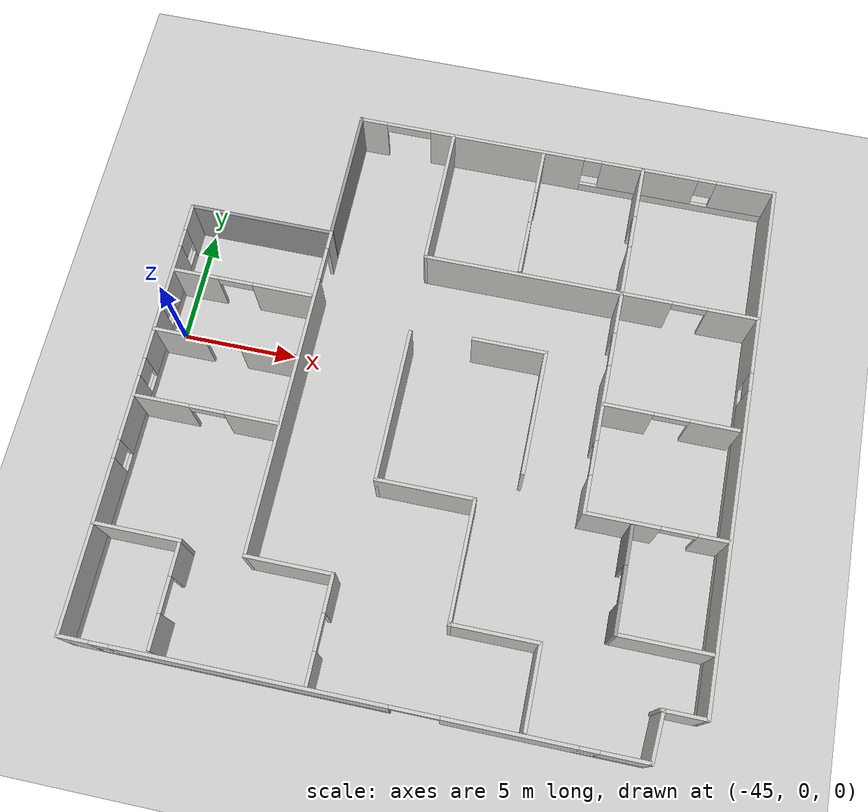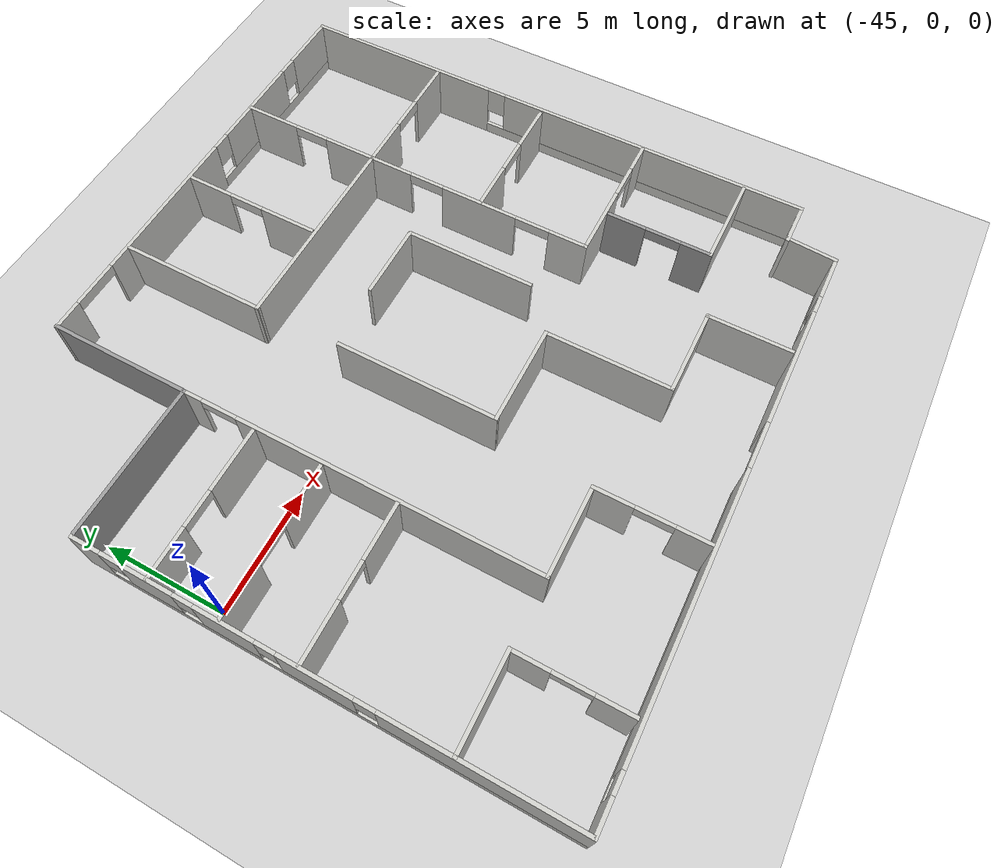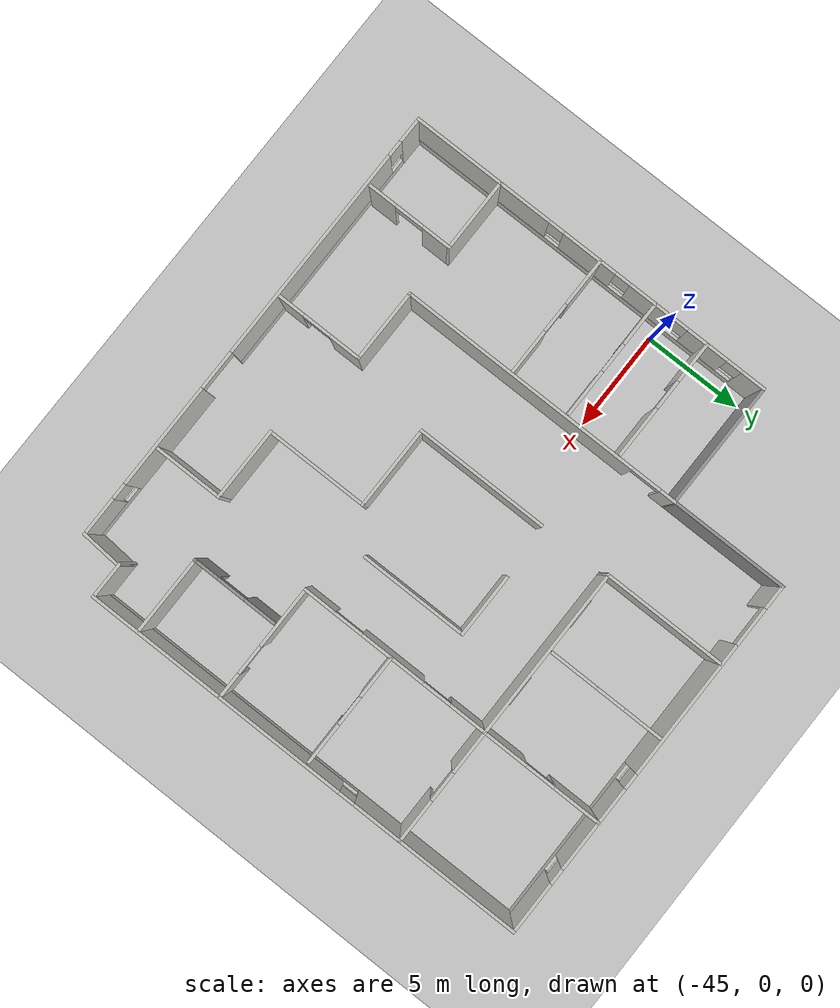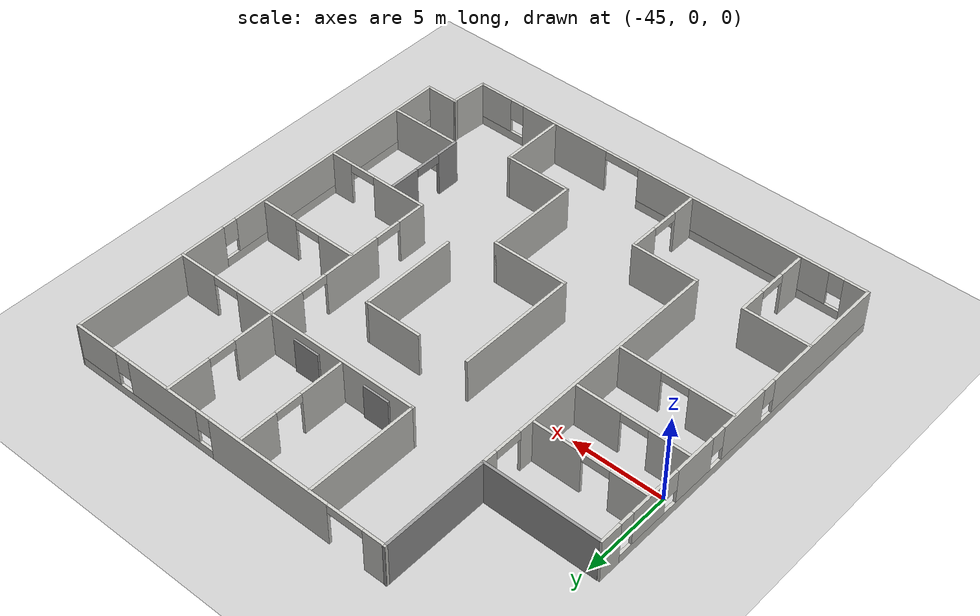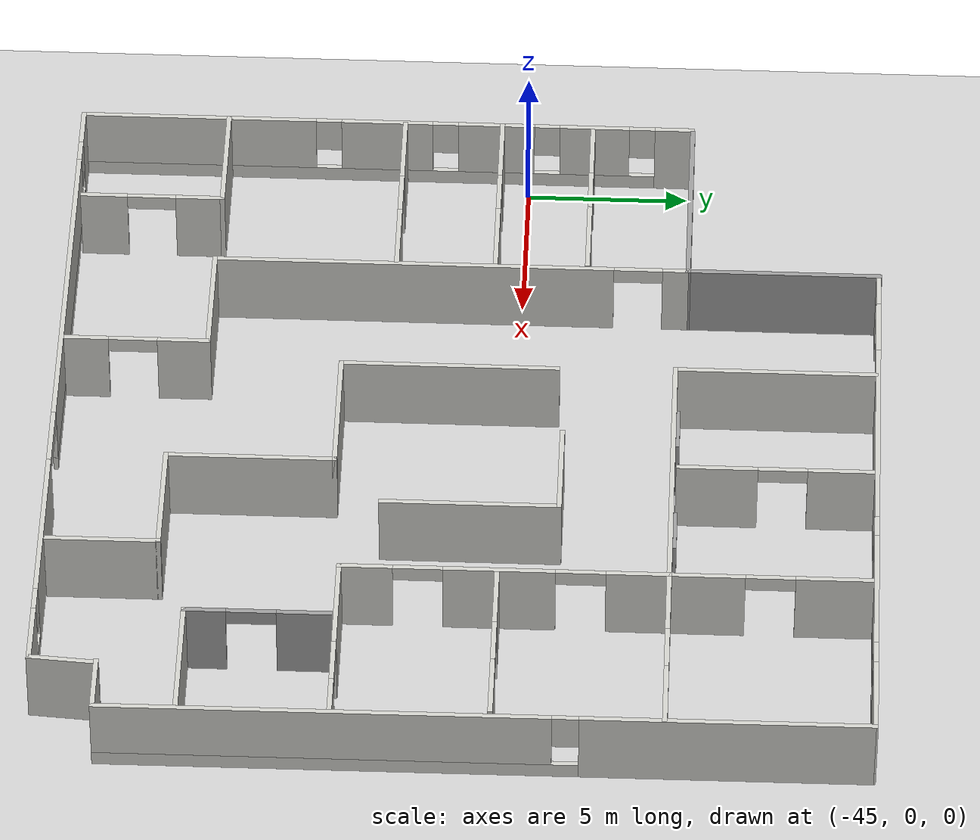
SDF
<sdf version="1.6">
 <world name="default">
  <model name="ground_plane">
   <static>1</static>
   <link name="link">
    <collision name="collision">
     <geometry><plane><normal>0 0 1</normal><size>100 100</size></plane></geometry>
     <surface><friction><ode><mu>100</mu><mu2>50</mu2></ode></friction></surface>
    </collision>
    <visual name="visual">
     <cast_shadows>0</cast_shadows>
     <geometry><plane><normal>0 0 1</normal><size>100 100</size></plane></geometry>
     <material>
      <script><uri>file://media/materials/scripts/gazebo.material</uri><name>Gazebo/Grey</name></script>
     </material>
    </visual>
   </link>
  </model>
  <model name="Multi_25_4">
   <pose>-33.1031 -1.49361 0 0 -0 0</pose>
   <link name="Door_40">
    <collision name="Door_40_Collision">
     <geometry><box><size>1.5 0.17 2</size></box></geometry>
     <pose>0 0 1 0 -0 0</pose>
    </collision>
    <visual name="Door_40_Visual">
     <pose>0 0 1 0 -0 0</pose>
     <geometry><box><size>1.5 0.17 2</size></box></geometry>
     <material>
      <script><uri>file://media/materials/scripts/gazebo.material</uri><name>Gazebo/Grey</name></script>
     </material>
    </visual>
    <pose>0.06254 6.41485 0 0 -0 0</pose>
   </link>
   <link name="Door_41">
    <collision name="Door_41_Collision">
     <geometry><box><size>1.5 0.17 2</size></box></geometry>
     <pose>0 0 1 0 -0 0</pose>
    </collision>
    <visual name="Door_41_Visual">
     <pose>0 0 1 0 -0 0</pose>
     <geometry><box><size>1.5 0.17 2</size></box></geometry>
     <material>
      <script><uri>file://media/materials/scripts/gazebo.material</uri><name>Gazebo/Grey</name></script>
     </material>
    </visual>
    <pose>4.32099 6.41485 0 0 -0 0</pose>
   </link>
   <link name="Wall_114">
    <pose>3.10866 12.4922 0 0 -0 0</pose>
    <visual name="Wall_114_Visual_0">
     <pose>-8.79485 0 1.25 0 -0 0</pose>
     <geometry><box><size>1.28231 0.15 2.5</size></box></geometry>
     <material>
      <script><uri>file://media/materials/scripts/gazebo.material</uri><name>Gazebo/CeilingTiled</name></script>
      <ambient>1 1 1 1</ambient>
     </material>
     <meta><layer>0</layer></meta>
    </visual>
    <collision name="Wall_114_Collision_0">
     <geometry><box><size>1.28231 0.15 2.5</size></box></geometry>
     <pose>-8.79485 0 1.25 0 -0 0</pose>
    </collision>
    <visual name="Wall_114_Visual_1">
     <pose>-2.64652 0 1.25 0 -0 0</pose>
     <geometry><box><size>7.01435 0.15 2.5</size></box></geometry>
     <material>
      <script><uri>file://media/materials/scripts/gazebo.material</uri><name>Gazebo/CeilingTiled</name></script>
      <ambient>1 1 1 1</ambient>
     </material>
     <meta><layer>0</layer></meta>
    </visual>
    <collision name="Wall_114_Collision_1">
     <geometry><box><size>7.01435 0.15 2.5</size></box></geometry>
     <pose>-2.64652 0 1.25 0 -0 0</pose>
    </collision>
    <visual name="Wall_114_Visual_2">
     <pose>5.14833 0 0.25 0 -0 0</pose>
     <geometry><box><size>8.57534 0.15 0.5</size></box></geometry>
     <material>
      <script><uri>file://media/materials/scripts/gazebo.material</uri><name>Gazebo/CeilingTiled</name></script>
      <ambient>1 1 1 1</ambient>
     </material>
     <meta><layer>0</layer></meta>
    </visual>
    <collision name="Wall_114_Collision_2">
     <geometry><box><size>8.57534 0.15 0.5</size></box></geometry>
     <pose>5.14833 0 0.25 0 -0 0</pose>
    </collision>
    <visual name="Wall_114_Visual_3">
     <pose>3.82871 0 1.5 0 -0 0</pose>
     <geometry><box><size>4.3361 0.15 2</size></box></geometry>
     <material>
      <script><uri>file://media/materials/scripts/gazebo.material</uri><name>Gazebo/CeilingTiled</name></script>
      <ambient>1 1 1 1</ambient>
     </material>
     <meta><layer>0</layer></meta>
    </visual>
    <collision name="Wall_114_Collision_3">
     <geometry><box><size>4.3361 0.15 2</size></box></geometry>
     <pose>3.82871 0 1.5 0 -0 0</pose>
    </collision>
    <visual name="Wall_114_Visual_4">
     <pose>8.11638 0 1.5 0 -0 0</pose>
     <geometry><box><size>2.63924 0.15 2</size></box></geometry>
     <material>
      <script><uri>file://media/materials/scripts/gazebo.material</uri><name>Gazebo/CeilingTiled</name></script>
      <ambient>1 1 1 1</ambient>
     </material>
     <meta><layer>0</layer></meta>
    </visual>
    <collision name="Wall_114_Collision_4">
     <geometry><box><size>2.63924 0.15 2</size></box></geometry>
     <pose>8.11638 0 1.5 0 -0 0</pose>
    </collision>
    <visual name="Wall_114_Visual_5">
     <pose>1.26066 0 1.9 0 -0 0</pose>
     <geometry><box><size>0.8 0.15 1.2</size></box></geometry>
     <material>
      <script><uri>file://media/materials/scripts/gazebo.material</uri><name>Gazebo/CeilingTiled</name></script>
      <ambient>1 1 1 1</ambient>
     </material>
     <meta><layer>0</layer></meta>
    </visual>
    <collision name="Wall_114_Collision_5">
     <geometry><box><size>0.8 0.15 1.2</size></box></geometry>
     <pose>1.26066 0 1.9 0 -0 0</pose>
    </collision>
    <visual name="Wall_114_Visual_6">
     <pose>6.39676 0 1.9 0 -0 0</pose>
     <geometry><box><size>0.8 0.15 1.2</size></box></geometry>
     <material>
      <script><uri>file://media/materials/scripts/gazebo.material</uri><name>Gazebo/CeilingTiled</name></script>
      <ambient>1 1 1 1</ambient>
     </material>
     <meta><layer>0</layer></meta>
    </visual>
    <collision name="Wall_114_Collision_6">
     <geometry><box><size>0.8 0.15 1.2</size></box></geometry>
     <pose>6.39676 0 1.9 0 -0 0</pose>
    </collision>
    <visual name="Wall_114_Visual_7">
     <pose>-7.15369 0 2.25 0 -0 0</pose>
     <geometry><box><size>2 0.15 0.5</size></box></geometry>
     <material>
      <script><uri>file://media/materials/scripts/gazebo.material</uri><name>Gazebo/CeilingTiled</name></script>
      <ambient>1 1 1 1</ambient>
     </material>
     <meta><layer>0</layer></meta>
    </visual>
    <collision name="Wall_114_Collision_7">
     <geometry><box><size>2 0.15 0.5</size></box></geometry>
     <pose>-7.15369 0 2.25 0 -0 0</pose>
    </collision>
   </link>
   <link name="Wall_116">
    <pose>-12.5303 -2.9483 0 0 -0 -1.5708</pose>
    <visual name="Wall_116_Visual_0">
     <pose>-9.01278 0 1.25 0 -0 0</pose>
     <geometry><box><size>1.24344 0.15 2.5</size></box></geometry>
     <material>
      <script><uri>file://media/materials/scripts/gazebo.material</uri><name>Gazebo/CeilingTiled</name></script>
      <ambient>1 1 1 1</ambient>
     </material>
     <meta><layer>0</layer></meta>
    </visual>
    <collision name="Wall_116_Collision_0">
     <geometry><box><size>1.24344 0.15 2.5</size></box></geometry>
     <pose>-9.01278 0 1.25 0 -0 0</pose>
    </collision>
    <visual name="Wall_116_Visual_1">
     <pose>0.621721 0 0.25 0 -0 0</pose>
     <geometry><box><size>18.0256 0.15 0.5</size></box></geometry>
     <material>
      <script><uri>file://media/materials/scripts/gazebo.material</uri><name>Gazebo/CeilingTiled</name></script>
      <ambient>1 1 1 1</ambient>
     </material>
     <meta><layer>0</layer></meta>
    </visual>
    <collision name="Wall_116_Collision_1">
     <geometry><box><size>18.0256 0.15 0.5</size></box></geometry>
     <pose>0.621721 0 0.25 0 -0 0</pose>
    </collision>
    <visual name="Wall_116_Visual_2">
     <pose>-6.50145 0 1.5 0 -0 0</pose>
     <geometry><box><size>2.17922 0.15 2</size></box></geometry>
     <material>
      <script><uri>file://media/materials/scripts/gazebo.material</uri><name>Gazebo/CeilingTiled</name></script>
      <ambient>1 1 1 1</ambient>
     </material>
     <meta><layer>0</layer></meta>
    </visual>
    <collision name="Wall_116_Collision_2">
     <geometry><box><size>2.17922 0.15 2</size></box></geometry>
     <pose>-6.50145 0 1.5 0 -0 0</pose>
    </collision>
    <visual name="Wall_116_Visual_3">
     <pose>-3.41582 0 1.5 0 -0 0</pose>
     <geometry><box><size>2.39202 0.15 2</size></box></geometry>
     <material>
      <script><uri>file://media/materials/scripts/gazebo.material</uri><name>Gazebo/CeilingTiled</name></script>
      <ambient>1 1 1 1</ambient>
     </material>
     <meta><layer>0</layer></meta>
    </visual>
    <collision name="Wall_116_Collision_3">
     <geometry><box><size>2.39202 0.15 2</size></box></geometry>
     <pose>-3.41582 0 1.5 0 -0 0</pose>
    </collision>
    <visual name="Wall_116_Visual_4">
     <pose>0.015603 0 1.5 0 -0 0</pose>
     <geometry><box><size>2.87083 0.15 2</size></box></geometry>
     <material>
      <script><uri>file://media/materials/scripts/gazebo.material</uri><name>Gazebo/CeilingTiled</name></script>
      <ambient>1 1 1 1</ambient>
     </material>
     <meta><layer>0</layer></meta>
    </visual>
    <collision name="Wall_116_Collision_4">
     <geometry><box><size>2.87083 0.15 2</size></box></geometry>
     <pose>0.015603 0 1.5 0 -0 0</pose>
    </collision>
    <visual name="Wall_116_Visual_5">
     <pose>5.94276 0 1.5 0 -0 0</pose>
     <geometry><box><size>7.38348 0.15 2</size></box></geometry>
     <material>
      <script><uri>file://media/materials/scripts/gazebo.material</uri><name>Gazebo/CeilingTiled</name></script>
      <ambient>1 1 1 1</ambient>
     </material>
     <meta><layer>0</layer></meta>
    </visual>
    <collision name="Wall_116_Collision_5">
     <geometry><box><size>7.38348 0.15 2</size></box></geometry>
     <pose>5.94276 0 1.5 0 -0 0</pose>
    </collision>
    <visual name="Wall_116_Visual_6">
     <pose>-7.99106 0 1.9 0 -0 0</pose>
     <geometry><box><size>0.8 0.15 1.2</size></box></geometry>
     <material>
      <script><uri>file://media/materials/scripts/gazebo.material</uri><name>Gazebo/CeilingTiled</name></script>
      <ambient>1 1 1 1</ambient>
     </material>
     <meta><layer>0</layer></meta>
    </visual>
    <collision name="Wall_116_Collision_6">
     <geometry><box><size>0.8 0.15 1.2</size></box></geometry>
     <pose>-7.99106 0 1.9 0 -0 0</pose>
    </collision>
    <visual name="Wall_116_Visual_7">
     <pose>-5.01183 0 1.9 0 -0 0</pose>
     <geometry><box><size>0.8 0.15 1.2</size></box></geometry>
     <material>
      <script><uri>file://media/materials/scripts/gazebo.material</uri><name>Gazebo/CeilingTiled</name></script>
      <ambient>1 1 1 1</ambient>
     </material>
     <meta><layer>0</layer></meta>
    </visual>
    <collision name="Wall_116_Collision_7">
     <geometry><box><size>0.8 0.15 1.2</size></box></geometry>
     <pose>-5.01183 0 1.9 0 -0 0</pose>
    </collision>
    <visual name="Wall_116_Visual_8">
     <pose>-1.81981 0 1.9 0 -0 0</pose>
     <geometry><box><size>0.8 0.15 1.2</size></box></geometry>
     <material>
      <script><uri>file://media/materials/scripts/gazebo.material</uri><name>Gazebo/CeilingTiled</name></script>
      <ambient>1 1 1 1</ambient>
     </material>
     <meta><layer>0</layer></meta>
    </visual>
    <collision name="Wall_116_Collision_8">
     <geometry><box><size>0.8 0.15 1.2</size></box></geometry>
     <pose>-1.81981 0 1.9 0 -0 0</pose>
    </collision>
    <visual name="Wall_116_Visual_9">
     <pose>1.85102 0 1.9 0 -0 0</pose>
     <geometry><box><size>0.8 0.15 1.2</size></box></geometry>
     <material>
      <script><uri>file://media/materials/scripts/gazebo.material</uri><name>Gazebo/CeilingTiled</name></script>
      <ambient>1 1 1 1</ambient>
     </material>
     <meta><layer>0</layer></meta>
    </visual>
    <collision name="Wall_116_Collision_9">
     <geometry><box><size>0.8 0.15 1.2</size></box></geometry>
     <pose>1.85102 0 1.9 0 -0 0</pose>
    </collision>
   </link>
   <link name="Wall_118">
    <pose>12.4999 0.992199 0 0 -0 -1.56817</pose>
    <visual name="Wall_118_Visual_0">
     <pose>-7.19016 0 1.25 0 -0 0</pose>
     <geometry><box><size>8.76975 0.15 2.5</size></box></geometry>
     <material>
      <script><uri>file://media/materials/scripts/gazebo.material</uri><name>Gazebo/CeilingTiled</name></script>
      <ambient>1 1 1 1</ambient>
     </material>
     <meta><layer>0</layer></meta>
    </visual>
    <collision name="Wall_118_Collision_0">
     <geometry><box><size>8.76975 0.15 2.5</size></box></geometry>
     <pose>-7.19016 0 1.25 0 -0 0</pose>
    </collision>
    <visual name="Wall_118_Visual_1">
     <pose>4.38488 0 0.25 0 -0 0</pose>
     <geometry><box><size>14.3803 0.15 0.5</size></box></geometry>
     <material>
      <script><uri>file://media/materials/scripts/gazebo.material</uri><name>Gazebo/CeilingTiled</name></script>
      <ambient>1 1 1 1</ambient>
     </material>
     <meta><layer>0</layer></meta>
    </visual>
    <collision name="Wall_118_Collision_1">
     <geometry><box><size>14.3803 0.15 0.5</size></box></geometry>
     <pose>4.38488 0 0.25 0 -0 0</pose>
    </collision>
    <visual name="Wall_118_Visual_2">
     <pose>4.78488 0 1.5 0 -0 0</pose>
     <geometry><box><size>13.5803 0.15 2</size></box></geometry>
     <material>
      <script><uri>file://media/materials/scripts/gazebo.material</uri><name>Gazebo/CeilingTiled</name></script>
      <ambient>1 1 1 1</ambient>
     </material>
     <meta><layer>0</layer></meta>
    </visual>
    <collision name="Wall_118_Collision_2">
     <geometry><box><size>13.5803 0.15 2</size></box></geometry>
     <pose>4.78488 0 1.5 0 -0 0</pose>
    </collision>
    <visual name="Wall_118_Visual_3">
     <pose>-2.40529 0 1.9 0 -0 0</pose>
     <geometry><box><size>0.8 0.15 1.2</size></box></geometry>
     <material>
      <script><uri>file://media/materials/scripts/gazebo.material</uri><name>Gazebo/CeilingTiled</name></script>
      <ambient>1 1 1 1</ambient>
     </material>
     <meta><layer>0</layer></meta>
    </visual>
    <collision name="Wall_118_Collision_3">
     <geometry><box><size>0.8 0.15 1.2</size></box></geometry>
     <pose>-2.40529 0 1.9 0 -0 0</pose>
    </collision>
   </link>
   <link name="Wall_120">
    <pose>-0.961819 -12.5078 0 0 -0 0</pose>
    <visual name="Wall_120_Visual_0">
     <pose>-10.9737 0 1.25 0 -0 0</pose>
     <geometry><box><size>1.33957 0.15 2.5</size></box></geometry>
     <material>
      <script><uri>file://media/materials/scripts/gazebo.material</uri><name>Gazebo/CeilingTiled</name></script>
      <ambient>1 1 1 1</ambient>
     </material>
     <meta><layer>0</layer></meta>
    </visual>
    <collision name="Wall_120_Collision_0">
     <geometry><box><size>1.33957 0.15 2.5</size></box></geometry>
     <pose>-10.9737 0 1.25 0 -0 0</pose>
    </collision>
    <visual name="Wall_120_Visual_1">
     <pose>6.20682 0 1.25 0 -0 0</pose>
     <geometry><box><size>5.32866 0.15 2.5</size></box></geometry>
     <material>
      <script><uri>file://media/materials/scripts/gazebo.material</uri><name>Gazebo/CeilingTiled</name></script>
      <ambient>1 1 1 1</ambient>
     </material>
     <meta><layer>0</layer></meta>
    </visual>
    <collision name="Wall_120_Collision_1">
     <geometry><box><size>5.32866 0.15 2.5</size></box></geometry>
     <pose>6.20682 0 1.25 0 -0 0</pose>
    </collision>
    <visual name="Wall_120_Visual_2">
     <pose>-4.38073 0 0.25 0 -0 0</pose>
     <geometry><box><size>11.8465 0.15 0.5</size></box></geometry>
     <material>
      <script><uri>file://media/materials/scripts/gazebo.material</uri><name>Gazebo/CeilingTiled</name></script>
      <ambient>1 1 1 1</ambient>
     </material>
     <meta><layer>0</layer></meta>
    </visual>
    <collision name="Wall_120_Collision_2">
     <geometry><box><size>11.8465 0.15 0.5</size></box></geometry>
     <pose>-4.38073 0 0.25 0 -0 0</pose>
    </collision>
    <visual name="Wall_120_Visual_3">
     <pose>10.2573 0 0.25 0 -0 0</pose>
     <geometry><box><size>2.77237 0.15 0.5</size></box></geometry>
     <material>
      <script><uri>file://media/materials/scripts/gazebo.material</uri><name>Gazebo/CeilingTiled</name></script>
      <ambient>1 1 1 1</ambient>
     </material>
     <meta><layer>0</layer></meta>
    </visual>
    <collision name="Wall_120_Collision_3">
     <geometry><box><size>2.77237 0.15 0.5</size></box></geometry>
     <pose>10.2573 0 0.25 0 -0 0</pose>
    </collision>
    <visual name="Wall_120_Visual_4">
     <pose>-3.98073 0 1.5 0 -0 0</pose>
     <geometry><box><size>11.0465 0.15 2</size></box></geometry>
     <material>
      <script><uri>file://media/materials/scripts/gazebo.material</uri><name>Gazebo/CeilingTiled</name></script>
      <ambient>1 1 1 1</ambient>
     </material>
     <meta><layer>0</layer></meta>
    </visual>
    <collision name="Wall_120_Collision_4">
     <geometry><box><size>11.0465 0.15 2</size></box></geometry>
     <pose>-3.98073 0 1.5 0 -0 0</pose>
    </collision>
    <visual name="Wall_120_Visual_5">
     <pose>-3.98073 0 1.5 0 -0 0</pose>
     <geometry><box><size>11.0465 0.15 2</size></box></geometry>
     <material>
      <script><uri>file://media/materials/scripts/gazebo.material</uri><name>Gazebo/CeilingTiled</name></script>
      <ambient>1 1 1 1</ambient>
     </material>
     <meta><layer>0</layer></meta>
    </visual>
    <collision name="Wall_120_Collision_5">
     <geometry><box><size>11.0465 0.15 2</size></box></geometry>
     <pose>-3.98073 0 1.5 0 -0 0</pose>
    </collision>
    <visual name="Wall_120_Visual_6">
     <pose>10.6573 0 1.5 0 -0 0</pose>
     <geometry><box><size>1.97237 0.15 2</size></box></geometry>
     <material>
      <script><uri>file://media/materials/scripts/gazebo.material</uri><name>Gazebo/CeilingTiled</name></script>
      <ambient>1 1 1 1</ambient>
     </material>
     <meta><layer>0</layer></meta>
    </visual>
    <collision name="Wall_120_Collision_6">
     <geometry><box><size>1.97237 0.15 2</size></box></geometry>
     <pose>10.6573 0 1.5 0 -0 0</pose>
    </collision>
    <visual name="Wall_120_Visual_7">
     <pose>-9.90396 0 1.9 0 -0 0</pose>
     <geometry><box><size>0.8 0.15 1.2</size></box></geometry>
     <material>
      <script><uri>file://media/materials/scripts/gazebo.material</uri><name>Gazebo/CeilingTiled</name></script>
      <ambient>1 1 1 1</ambient>
     </material>
     <meta><layer>0</layer></meta>
    </visual>
    <collision name="Wall_120_Collision_7">
     <geometry><box><size>0.8 0.15 1.2</size></box></geometry>
     <pose>-9.90396 0 1.9 0 -0 0</pose>
    </collision>
    <visual name="Wall_120_Visual_8">
     <pose>9.27115 0 1.9 0 -0 0</pose>
     <geometry><box><size>0.8 0.15 1.2</size></box></geometry>
     <material>
      <script><uri>file://media/materials/scripts/gazebo.material</uri><name>Gazebo/CeilingTiled</name></script>
      <ambient>1 1 1 1</ambient>
     </material>
     <meta><layer>0</layer></meta>
    </visual>
    <collision name="Wall_120_Collision_8">
     <geometry><box><size>0.8 0.15 1.2</size></box></geometry>
     <pose>9.27115 0 1.9 0 -0 0</pose>
    </collision>
    <visual name="Wall_120_Visual_9">
     <pose>2.54249 0 2.25 0 -0 0</pose>
     <geometry><box><size>2 0.15 0.5</size></box></geometry>
     <material>
      <script><uri>file://media/materials/scripts/gazebo.material</uri><name>Gazebo/CeilingTiled</name></script>
      <ambient>1 1 1 1</ambient>
     </material>
     <meta><layer>0</layer></meta>
    </visual>
    <collision name="Wall_120_Collision_9">
     <geometry><box><size>2 0.15 0.5</size></box></geometry>
     <pose>2.54249 0 2.25 0 -0 0</pose>
    </collision>
    <visual name="Wall_120_Visual_10">
     <pose>2.54249 0 2.25 0 -0 0</pose>
     <geometry><box><size>2 0.15 0.5</size></box></geometry>
     <material>
      <script><uri>file://media/materials/scripts/gazebo.material</uri><name>Gazebo/CeilingTiled</name></script>
      <ambient>1 1 1 1</ambient>
     </material>
     <meta><layer>0</layer></meta>
    </visual>
    <collision name="Wall_120_Collision_10">
     <geometry><box><size>2 0.15 0.5</size></box></geometry>
     <pose>2.54249 0 2.25 0 -0 0</pose>
    </collision>
   </link>
   <link name="Wall_122">
    <collision name="Wall_122_Collision">
     <geometry><box><size>6.052 0.15 2.5</size></box></geometry>
     <pose>0 0 1.25 0 -0 0</pose>
    </collision>
    <visual name="Wall_122_Visual">
     <pose>0 0 1.25 0 -0 0</pose>
     <geometry><box><size>6.052 0.15 2.5</size></box></geometry>
     <material>
      <script><uri>file://media/materials/scripts/gazebo.material</uri><name>Gazebo/Grey</name></script>
      <ambient>1 1 1 1</ambient>
     </material>
     <meta><layer>0</layer></meta>
    </visual>
    <pose>-6.25234 9.5622 0 0 -0 -1.5708</pose>
   </link>
   <link name="Wall_123">
    <collision name="Wall_123_Collision">
     <geometry><box><size>6.30261 0.15 2.5</size></box></geometry>
     <pose>0 0 1.25 0 -0 0</pose>
    </collision>
    <visual name="Wall_123_Visual">
     <pose>0 0 1.25 0 -0 0</pose>
     <geometry><box><size>6.30261 0.15 2.5</size></box></geometry>
     <material>
      <script><uri>file://media/materials/scripts/gazebo.material</uri><name>Gazebo/Grey</name></script>
      <ambient>1 1 1 1</ambient>
     </material>
     <meta><layer>0</layer></meta>
    </visual>
    <pose>-9.32864 6.61989 0 0 -0 3.13877</pose>
   </link>
   <link name="Wall_125">
    <pose>-6.25234 -0.698301 0 0 -0 -1.5708</pose>
    <visual name="Wall_125_Visual_0">
     <pose>-6.95219 0 1.25 0 -0 0</pose>
     <geometry><box><size>0.86462 0.15 2.5</size></box></geometry>
     <material>
      <script><uri>file://media/materials/scripts/gazebo.material</uri><name>Gazebo/CeilingTiled</name></script>
      <ambient>1 1 1 1</ambient>
     </material>
     <meta><layer>0</layer></meta>
    </visual>
    <collision name="Wall_125_Collision_0">
     <geometry><box><size>0.86462 0.15 2.5</size></box></geometry>
     <pose>-6.95219 0 1.25 0 -0 0</pose>
    </collision>
    <visual name="Wall_125_Visual_1">
     <pose>1.18231 0 1.25 0 -0 0</pose>
     <geometry><box><size>12.4044 0.15 2.5</size></box></geometry>
     <material>
      <script><uri>file://media/materials/scripts/gazebo.material</uri><name>Gazebo/CeilingTiled</name></script>
      <ambient>1 1 1 1</ambient>
     </material>
     <meta><layer>0</layer></meta>
    </visual>
    <collision name="Wall_125_Collision_1">
     <geometry><box><size>12.4044 0.15 2.5</size></box></geometry>
     <pose>1.18231 0 1.25 0 -0 0</pose>
    </collision>
    <visual name="Wall_125_Visual_2">
     <pose>-5.76988 0 2.25 0 -0 0</pose>
     <geometry><box><size>1.5 0.15 0.5</size></box></geometry>
     <material>
      <script><uri>file://media/materials/scripts/gazebo.material</uri><name>Gazebo/CeilingTiled</name></script>
      <ambient>1 1 1 1</ambient>
     </material>
     <meta><layer>0</layer></meta>
    </visual>
    <collision name="Wall_125_Collision_2">
     <geometry><box><size>1.5 0.15 0.5</size></box></geometry>
     <pose>-5.76988 0 2.25 0 -0 0</pose>
    </collision>
   </link>
   <link name="Wall_127">
    <pose>-9.46775 3.50136 0 0 -0 0</pose>
    <visual name="Wall_127_Visual_0">
     <pose>-2.06924 0 1.25 0 -0 0</pose>
     <geometry><box><size>2.11151 0.15 2.5</size></box></geometry>
     <material>
      <script><uri>file://media/materials/scripts/gazebo.material</uri><name>Gazebo/CeilingTiled</name></script>
      <ambient>1 1 1 1</ambient>
     </material>
     <meta><layer>0</layer></meta>
    </visual>
    <collision name="Wall_127_Collision_0">
     <geometry><box><size>2.11151 0.15 2.5</size></box></geometry>
     <pose>-2.06924 0 1.25 0 -0 0</pose>
    </collision>
    <visual name="Wall_127_Visual_1">
     <pose>1.80576 0 1.25 0 -0 0</pose>
     <geometry><box><size>2.63849 0.15 2.5</size></box></geometry>
     <material>
      <script><uri>file://media/materials/scripts/gazebo.material</uri><name>Gazebo/CeilingTiled</name></script>
      <ambient>1 1 1 1</ambient>
     </material>
     <meta><layer>0</layer></meta>
    </visual>
    <collision name="Wall_127_Collision_1">
     <geometry><box><size>2.63849 0.15 2.5</size></box></geometry>
     <pose>1.80576 0 1.25 0 -0 0</pose>
    </collision>
    <visual name="Wall_127_Visual_2">
     <pose>-0.263485 0 2.25 0 -0 0</pose>
     <geometry><box><size>1.5 0.15 0.5</size></box></geometry>
     <material>
      <script><uri>file://media/materials/scripts/gazebo.material</uri><name>Gazebo/CeilingTiled</name></script>
      <ambient>1 1 1 1</ambient>
     </material>
     <meta><layer>0</layer></meta>
    </visual>
    <collision name="Wall_127_Collision_2">
     <geometry><box><size>1.5 0.15 0.5</size></box></geometry>
     <pose>-0.263485 0 2.25 0 -0 0</pose>
    </collision>
   </link>
   <link name="Wall_129">
    <pose>-9.47426 0.65853 0 0 -0 0</pose>
    <visual name="Wall_129_Visual_0">
     <pose>-1.96835 0 1.25 0 -0 0</pose>
     <geometry><box><size>2.3133 0.15 2.5</size></box></geometry>
     <material>
      <script><uri>file://media/materials/scripts/gazebo.material</uri><name>Gazebo/CeilingTiled</name></script>
      <ambient>1 1 1 1</ambient>
     </material>
     <meta><layer>0</layer></meta>
    </visual>
    <collision name="Wall_129_Collision_0">
     <geometry><box><size>2.3133 0.15 2.5</size></box></geometry>
     <pose>-1.96835 0 1.25 0 -0 0</pose>
    </collision>
    <visual name="Wall_129_Visual_1">
     <pose>1.90665 0 1.25 0 -0 0</pose>
     <geometry><box><size>2.4367 0.15 2.5</size></box></geometry>
     <material>
      <script><uri>file://media/materials/scripts/gazebo.material</uri><name>Gazebo/CeilingTiled</name></script>
      <ambient>1 1 1 1</ambient>
     </material>
     <meta><layer>0</layer></meta>
    </visual>
    <collision name="Wall_129_Collision_1">
     <geometry><box><size>2.4367 0.15 2.5</size></box></geometry>
     <pose>1.90665 0 1.25 0 -0 0</pose>
    </collision>
    <visual name="Wall_129_Visual_2">
     <pose>-0.061698 0 2.25 0 -0 0</pose>
     <geometry><box><size>1.5 0.15 0.5</size></box></geometry>
     <material>
      <script><uri>file://media/materials/scripts/gazebo.material</uri><name>Gazebo/CeilingTiled</name></script>
      <ambient>1 1 1 1</ambient>
     </material>
     <meta><layer>0</layer></meta>
    </visual>
    <collision name="Wall_129_Collision_2">
     <geometry><box><size>1.5 0.15 0.5</size></box></geometry>
     <pose>-0.061698 0 2.25 0 -0 0</pose>
    </collision>
   </link>
   <link name="Wall_131">
    <pose>-9.41761 -2.39162 0 0 -0 0</pose>
    <visual name="Wall_131_Visual_0">
     <pose>-1.91284 0 1.25 0 -0 0</pose>
     <geometry><box><size>2.42432 0.15 2.5</size></box></geometry>
     <material>
      <script><uri>file://media/materials/scripts/gazebo.material</uri><name>Gazebo/CeilingTiled</name></script>
      <ambient>1 1 1 1</ambient>
     </material>
     <meta><layer>0</layer></meta>
    </visual>
    <collision name="Wall_131_Collision_0">
     <geometry><box><size>2.42432 0.15 2.5</size></box></geometry>
     <pose>-1.91284 0 1.25 0 -0 0</pose>
    </collision>
    <visual name="Wall_131_Visual_1">
     <pose>1.96216 0 1.25 0 -0 0</pose>
     <geometry><box><size>2.32568 0.15 2.5</size></box></geometry>
     <material>
      <script><uri>file://media/materials/scripts/gazebo.material</uri><name>Gazebo/CeilingTiled</name></script>
      <ambient>1 1 1 1</ambient>
     </material>
     <meta><layer>0</layer></meta>
    </visual>
    <collision name="Wall_131_Collision_1">
     <geometry><box><size>2.32568 0.15 2.5</size></box></geometry>
     <pose>1.96216 0 1.25 0 -0 0</pose>
    </collision>
    <visual name="Wall_131_Visual_2">
     <pose>0.04932 0 2.25 0 -0 0</pose>
     <geometry><box><size>1.5 0.15 0.5</size></box></geometry>
     <material>
      <script><uri>file://media/materials/scripts/gazebo.material</uri><name>Gazebo/CeilingTiled</name></script>
      <ambient>1 1 1 1</ambient>
     </material>
     <meta><layer>0</layer></meta>
    </visual>
    <collision name="Wall_131_Collision_2">
     <geometry><box><size>1.5 0.15 0.5</size></box></geometry>
     <pose>0.04932 0 2.25 0 -0 0</pose>
    </collision>
   </link>
   <link name="Wall_133">
    <collision name="Wall_133_Collision">
     <geometry><box><size>3.75 0.15 2.5</size></box></geometry>
     <pose>0 0 1.25 0 -0 0</pose>
    </collision>
    <visual name="Wall_133_Visual">
     <pose>0 0 1.25 0 -0 0</pose>
     <geometry><box><size>3.75 0.15 2.5</size></box></geometry>
     <material>
      <script><uri>file://media/materials/scripts/gazebo.material</uri><name>Gazebo/CeilingTiled</name></script>
      <ambient>1 1 1 1</ambient>
     </material>
     <meta><layer>0</layer></meta>
    </visual>
    <pose>-4.45234 -8.0078 0 0 -0 0</pose>
   </link>
   <link name="Wall_134">
    <pose>-2.65234 -10.1828 0 0 -0 -1.5708</pose>
    <visual name="Wall_134_Visual_0">
     <pose>-1.43401 0 1.25 0 -0 0</pose>
     <geometry><box><size>1.63197 0.15 2.5</size></box></geometry>
     <material>
      <script><uri>file://media/materials/scripts/gazebo.material</uri><name>Gazebo/CeilingTiled</name></script>
      <ambient>1 1 1 1</ambient>
     </material>
     <meta><layer>0</layer></meta>
    </visual>
    <collision name="Wall_134_Collision_0">
     <geometry><box><size>1.63197 0.15 2.5</size></box></geometry>
     <pose>-1.43401 0 1.25 0 -0 0</pose>
    </collision>
    <visual name="Wall_134_Visual_1">
     <pose>1.56599 0 1.25 0 -0 0</pose>
     <geometry><box><size>1.36803 0.15 2.5</size></box></geometry>
     <material>
      <script><uri>file://media/materials/scripts/gazebo.material</uri><name>Gazebo/CeilingTiled</name></script>
      <ambient>1 1 1 1</ambient>
     </material>
     <meta><layer>0</layer></meta>
    </visual>
    <collision name="Wall_134_Collision_1">
     <geometry><box><size>1.36803 0.15 2.5</size></box></geometry>
     <pose>1.56599 0 1.25 0 -0 0</pose>
    </collision>
    <visual name="Wall_134_Visual_2">
     <pose>0.131974 0 2.25 0 -0 0</pose>
     <geometry><box><size>1.5 0.15 0.5</size></box></geometry>
     <material>
      <script><uri>file://media/materials/scripts/gazebo.material</uri><name>Gazebo/CeilingTiled</name></script>
      <ambient>1 1 1 1</ambient>
     </material>
     <meta><layer>0</layer></meta>
    </visual>
    <collision name="Wall_134_Collision_2">
     <geometry><box><size>1.5 0.15 0.5</size></box></geometry>
     <pose>0.131974 0 2.25 0 -0 0</pose>
    </collision>
   </link>
   <link name="Wall_137">
    <collision name="Wall_137_Collision">
     <geometry><box><size>6.25 0.15 2.5</size></box></geometry>
     <pose>0 0 1.25 0 -0 0</pose>
    </collision>
    <visual name="Wall_137_Visual">
     <pose>0 0 1.25 0 -0 0</pose>
     <geometry><box><size>6.25 0.15 2.5</size></box></geometry>
     <material>
      <script><uri>file://media/materials/scripts/gazebo.material</uri><name>Gazebo/CeilingTiled</name></script>
      <ambient>1 1 1 1</ambient>
     </material>
     <meta><layer>0</layer></meta>
    </visual>
    <pose>-1.98396 9.36294 0 0 -0 -1.5708</pose>
   </link>
   <link name="Wall_138">
    <collision name="Wall_138_Collision">
     <geometry><box><size>8.75 0.15 2.5</size></box></geometry>
     <pose>0 0 1.25 0 -0 0</pose>
    </collision>
    <visual name="Wall_138_Visual">
     <pose>0 0 1.25 0 -0 0</pose>
     <geometry><box><size>8.75 0.15 2.5</size></box></geometry>
     <material>
      <script><uri>file://media/materials/scripts/gazebo.material</uri><name>Gazebo/CeilingTiled</name></script>
      <ambient>1 1 1 1</ambient>
     </material>
     <meta><layer>0</layer></meta>
    </visual>
    <pose>2.31585 6.31307 0 0 -0 3e-05</pose>
   </link>
   <link name="Wall_139">
    <pose>6.61585 1.38807 0 0 -0 -1.57076</pose>
    <visual name="Wall_139_Visual_0">
     <pose>-4.01961 0 1.25 0 -0 0</pose>
     <geometry><box><size>1.96079 0.15 2.5</size></box></geometry>
     <material>
      <script><uri>file://media/materials/scripts/gazebo.material</uri><name>Gazebo/CeilingTiled</name></script>
      <ambient>1 1 1 1</ambient>
     </material>
     <meta><layer>0</layer></meta>
    </visual>
    <collision name="Wall_139_Collision_0">
     <geometry><box><size>1.96079 0.15 2.5</size></box></geometry>
     <pose>-4.01961 0 1.25 0 -0 0</pose>
    </collision>
    <visual name="Wall_139_Visual_1">
     <pose>0.144193 0 1.25 0 -0 0</pose>
     <geometry><box><size>3.36681 0.15 2.5</size></box></geometry>
     <material>
      <script><uri>file://media/materials/scripts/gazebo.material</uri><name>Gazebo/CeilingTiled</name></script>
      <ambient>1 1 1 1</ambient>
     </material>
     <meta><layer>0</layer></meta>
    </visual>
    <collision name="Wall_139_Collision_1">
     <geometry><box><size>3.36681 0.15 2.5</size></box></geometry>
     <pose>0.144193 0 1.25 0 -0 0</pose>
    </collision>
    <visual name="Wall_139_Visual_2">
     <pose>4.1638 0 1.25 0 -0 0</pose>
     <geometry><box><size>1.6724 0.15 2.5</size></box></geometry>
     <material>
      <script><uri>file://media/materials/scripts/gazebo.material</uri><name>Gazebo/CeilingTiled</name></script>
      <ambient>1 1 1 1</ambient>
     </material>
     <meta><layer>0</layer></meta>
    </visual>
    <collision name="Wall_139_Collision_2">
     <geometry><box><size>1.6724 0.15 2.5</size></box></geometry>
     <pose>4.1638 0 1.25 0 -0 0</pose>
    </collision>
    <visual name="Wall_139_Visual_3">
     <pose>-2.28921 0 2.25 0 -0 0</pose>
     <geometry><box><size>1.5 0.15 0.5</size></box></geometry>
     <material>
      <script><uri>file://media/materials/scripts/gazebo.material</uri><name>Gazebo/CeilingTiled</name></script>
      <ambient>1 1 1 1</ambient>
     </material>
     <meta><layer>0</layer></meta>
    </visual>
    <collision name="Wall_139_Collision_3">
     <geometry><box><size>1.5 0.15 0.5</size></box></geometry>
     <pose>-2.28921 0 2.25 0 -0 0</pose>
    </collision>
    <visual name="Wall_139_Visual_4">
     <pose>2.5776 0 2.25 0 -0 0</pose>
     <geometry><box><size>1.5 0.15 0.5</size></box></geometry>
     <material>
      <script><uri>file://media/materials/scripts/gazebo.material</uri><name>Gazebo/CeilingTiled</name></script>
      <ambient>1 1 1 1</ambient>
     </material>
     <meta><layer>0</layer></meta>
    </visual>
    <collision name="Wall_139_Collision_4">
     <geometry><box><size>1.5 0.15 0.5</size></box></geometry>
     <pose>2.5776 0 2.25 0 -0 0</pose>
    </collision>
   </link>
   <link name="Wall_140">
    <pose>9.54104 -3.53706 0 0 -0 0</pose>
    <visual name="Wall_140_Visual_0">
     <pose>-1.41286 0 1.25 0 -0 0</pose>
     <geometry><box><size>3.17428 0.15 2.5</size></box></geometry>
     <material>
      <script><uri>file://media/materials/scripts/gazebo.material</uri><name>Gazebo/CeilingTiled</name></script>
      <ambient>1 1 1 1</ambient>
     </material>
     <meta><layer>0</layer></meta>
    </visual>
    <collision name="Wall_140_Collision_0">
     <geometry><box><size>3.17428 0.15 2.5</size></box></geometry>
     <pose>-1.41286 0 1.25 0 -0 0</pose>
    </collision>
    <visual name="Wall_140_Visual_1">
     <pose>2.33714 0 1.25 0 -0 0</pose>
     <geometry><box><size>1.32572 0.15 2.5</size></box></geometry>
     <material>
      <script><uri>file://media/materials/scripts/gazebo.material</uri><name>Gazebo/CeilingTiled</name></script>
      <ambient>1 1 1 1</ambient>
     </material>
     <meta><layer>0</layer></meta>
    </visual>
    <collision name="Wall_140_Collision_1">
     <geometry><box><size>1.32572 0.15 2.5</size></box></geometry>
     <pose>2.33714 0 1.25 0 -0 0</pose>
    </collision>
    <visual name="Wall_140_Visual_2">
     <pose>0.924282 0 2.25 0 -0 0</pose>
     <geometry><box><size>1.5 0.15 0.5</size></box></geometry>
     <material>
      <script><uri>file://media/materials/scripts/gazebo.material</uri><name>Gazebo/CeilingTiled</name></script>
      <ambient>1 1 1 1</ambient>
     </material>
     <meta><layer>0</layer></meta>
    </visual>
    <collision name="Wall_140_Collision_2">
     <geometry><box><size>1.5 0.15 0.5</size></box></geometry>
     <pose>0.924282 0 2.25 0 -0 0</pose>
    </collision>
   </link>
   <link name="Wall_142">
    <collision name="Wall_142_Collision">
     <geometry><box><size>6.75 0.15 2.5</size></box></geometry>
     <pose>0 0 1.25 0 -0 0</pose>
    </collision>
    <visual name="Wall_142_Visual">
     <pose>0 0 1.25 0 -0 0</pose>
     <geometry><box><size>6.75 0.15 2.5</size></box></geometry>
     <material>
      <script><uri>file://media/materials/scripts/gazebo.material</uri><name>Gazebo/CeilingTiled</name></script>
      <ambient>1 1 1 1</ambient>
     </material>
     <meta><layer>0</layer></meta>
    </visual>
    <pose>-1.87893 -0.58772 0 0 -0 -1.5708</pose>
   </link>
   <link name="Wall_143">
    <collision name="Wall_143_Collision">
     <geometry><box><size>4.25 0.15 2.5</size></box></geometry>
     <pose>0 0 1.25 0 -0 0</pose>
    </collision>
    <visual name="Wall_143_Visual">
     <pose>0 0 1.25 0 -0 0</pose>
     <geometry><box><size>4.25 0.15 2.5</size></box></geometry>
     <material>
      <script><uri>file://media/materials/scripts/gazebo.material</uri><name>Gazebo/CeilingTiled</name></script>
      <ambient>1 1 1 1</ambient>
     </material>
     <meta><layer>0</layer></meta>
    </visual>
    <pose>0.171072 -3.88772 0 0 -0 0</pose>
   </link>
   <link name="Wall_144">
    <collision name="Wall_144_Collision">
     <geometry><box><size>5.25 0.15 2.5</size></box></geometry>
     <pose>0 0 1.25 0 -0 0</pose>
    </collision>
    <visual name="Wall_144_Visual">
     <pose>0 0 1.25 0 -0 0</pose>
     <geometry><box><size>5.25 0.15 2.5</size></box></geometry>
     <material>
      <script><uri>file://media/materials/scripts/gazebo.material</uri><name>Gazebo/CeilingTiled</name></script>
      <ambient>1 1 1 1</ambient>
     </material>
     <meta><layer>0</layer></meta>
    </visual>
    <pose>2.22107 -6.43772 0 0 -0 -1.5708</pose>
   </link>
   <link name="Wall_145">
    <collision name="Wall_145_Collision">
     <geometry><box><size>3.75 0.15 2.5</size></box></geometry>
     <pose>0 0 1.25 0 -0 0</pose>
    </collision>
    <visual name="Wall_145_Visual">
     <pose>0 0 1.25 0 -0 0</pose>
     <geometry><box><size>3.75 0.15 2.5</size></box></geometry>
     <material>
      <script><uri>file://media/materials/scripts/gazebo.material</uri><name>Gazebo/CeilingTiled</name></script>
      <ambient>1 1 1 1</ambient>
     </material>
     <meta><layer>0</layer></meta>
    </visual>
    <pose>4.02107 -8.98772 0 0 -0 0</pose>
   </link>
   <link name="Wall_146">
    <collision name="Wall_146_Collision">
     <geometry><box><size>3.5 0.15 2.5</size></box></geometry>
     <pose>0 0 1.25 0 -0 0</pose>
    </collision>
    <visual name="Wall_146_Visual">
     <pose>0 0 1.25 0 -0 0</pose>
     <geometry><box><size>3.5 0.15 2.5</size></box></geometry>
     <material>
      <script><uri>file://media/materials/scripts/gazebo.material</uri><name>Gazebo/CeilingTiled</name></script>
      <ambient>1 1 1 1</ambient>
     </material>
     <meta><layer>0</layer></meta>
    </visual>
    <pose>5.82107 -10.6627 0 0 -0 -1.5708</pose>
   </link>
   <link name="Wall_148">
    <pose>2.13904 9.4229 0 0 -0 -1.5708</pose>
    <visual name="Wall_148_Visual_0">
     <pose>-1.9831 0 1.25 0 -0 0</pose>
     <geometry><box><size>2.0338 0.15 2.5</size></box></geometry>
     <material>
      <script><uri>file://media/materials/scripts/gazebo.material</uri><name>Gazebo/CeilingTiled</name></script>
      <ambient>1 1 1 1</ambient>
     </material>
     <meta><layer>0</layer></meta>
    </visual>
    <collision name="Wall_148_Collision_0">
     <geometry><box><size>2.0338 0.15 2.5</size></box></geometry>
     <pose>-1.9831 0 1.25 0 -0 0</pose>
    </collision>
    <visual name="Wall_148_Visual_1">
     <pose>1.7669 0 1.25 0 -0 0</pose>
     <geometry><box><size>2.4662 0.15 2.5</size></box></geometry>
     <material>
      <script><uri>file://media/materials/scripts/gazebo.material</uri><name>Gazebo/CeilingTiled</name></script>
      <ambient>1 1 1 1</ambient>
     </material>
     <meta><layer>0</layer></meta>
    </visual>
    <collision name="Wall_148_Collision_1">
     <geometry><box><size>2.4662 0.15 2.5</size></box></geometry>
     <pose>1.7669 0 1.25 0 -0 0</pose>
    </collision>
    <visual name="Wall_148_Visual_2">
     <pose>-0.2162 0 2.25 0 -0 0</pose>
     <geometry><box><size>1.5 0.15 0.5</size></box></geometry>
     <material>
      <script><uri>file://media/materials/scripts/gazebo.material</uri><name>Gazebo/CeilingTiled</name></script>
      <ambient>1 1 1 1</ambient>
     </material>
     <meta><layer>0</layer></meta>
    </visual>
    <collision name="Wall_148_Collision_2">
     <geometry><box><size>1.5 0.15 0.5</size></box></geometry>
     <pose>-0.2162 0 2.25 0 -0 0</pose>
    </collision>
   </link>
   <link name="Wall_150">
    <pose>6.61566 9.3777 0 0 -0 -1.5708</pose>
    <visual name="Wall_150_Visual_0">
     <pose>-1.92356 0 1.25 0 -0 0</pose>
     <geometry><box><size>2.43267 0.15 2.5</size></box></geometry>
     <material>
      <script><uri>file://media/materials/scripts/gazebo.material</uri><name>Gazebo/CeilingTiled</name></script>
      <ambient>1 1 1 1</ambient>
     </material>
     <meta><layer>0</layer></meta>
    </visual>
    <collision name="Wall_150_Collision_0">
     <geometry><box><size>2.43267 0.15 2.5</size></box></geometry>
     <pose>-1.92356 0 1.25 0 -0 0</pose>
    </collision>
    <visual name="Wall_150_Visual_1">
     <pose>1.96633 0 1.25 0 -0 0</pose>
     <geometry><box><size>2.34713 0.15 2.5</size></box></geometry>
     <material>
      <script><uri>file://media/materials/scripts/gazebo.material</uri><name>Gazebo/CeilingTiled</name></script>
      <ambient>1 1 1 1</ambient>
     </material>
     <meta><layer>0</layer></meta>
    </visual>
    <collision name="Wall_150_Collision_1">
     <geometry><box><size>2.34713 0.15 2.5</size></box></geometry>
     <pose>1.96633 0 1.25 0 -0 0</pose>
    </collision>
    <visual name="Wall_150_Visual_2">
     <pose>0.042769 0 2.25 0 -0 0</pose>
     <geometry><box><size>1.5 0.15 0.5</size></box></geometry>
     <material>
      <script><uri>file://media/materials/scripts/gazebo.material</uri><name>Gazebo/CeilingTiled</name></script>
      <ambient>1 1 1 1</ambient>
     </material>
     <meta><layer>0</layer></meta>
    </visual>
    <collision name="Wall_150_Collision_2">
     <geometry><box><size>1.5 0.15 0.5</size></box></geometry>
     <pose>0.042769 0 2.25 0 -0 0</pose>
    </collision>
   </link>
   <link name="Wall_152">
    <pose>9.4738 1.1826 0 0 -0 0</pose>
    <visual name="Wall_152_Visual_0">
     <pose>-1.80357 0 1.25 0 -0 0</pose>
     <geometry><box><size>2.14286 0.15 2.5</size></box></geometry>
     <material>
      <script><uri>file://media/materials/scripts/gazebo.material</uri><name>Gazebo/CeilingTiled</name></script>
      <ambient>1 1 1 1</ambient>
     </material>
     <meta><layer>0</layer></meta>
    </visual>
    <collision name="Wall_152_Collision_0">
     <geometry><box><size>2.14286 0.15 2.5</size></box></geometry>
     <pose>-1.80357 0 1.25 0 -0 0</pose>
    </collision>
    <visual name="Wall_152_Visual_1">
     <pose>1.82143 0 1.25 0 -0 0</pose>
     <geometry><box><size>2.10714 0.15 2.5</size></box></geometry>
     <material>
      <script><uri>file://media/materials/scripts/gazebo.material</uri><name>Gazebo/CeilingTiled</name></script>
      <ambient>1 1 1 1</ambient>
     </material>
     <meta><layer>0</layer></meta>
    </visual>
    <collision name="Wall_152_Collision_1">
     <geometry><box><size>2.10714 0.15 2.5</size></box></geometry>
     <pose>1.82143 0 1.25 0 -0 0</pose>
    </collision>
    <visual name="Wall_152_Visual_2">
     <pose>0.017859 0 2.25 0 -0 0</pose>
     <geometry><box><size>1.5 0.15 0.5</size></box></geometry>
     <material>
      <script><uri>file://media/materials/scripts/gazebo.material</uri><name>Gazebo/CeilingTiled</name></script>
      <ambient>1 1 1 1</ambient>
     </material>
     <meta><layer>0</layer></meta>
    </visual>
    <collision name="Wall_152_Collision_2">
     <geometry><box><size>1.5 0.15 0.5</size></box></geometry>
     <pose>0.017859 0 2.25 0 -0 0</pose>
    </collision>
   </link>
   <link name="Wall_154">
    <pose>9.54066 6.3132 0 0 -0 0</pose>
    <visual name="Wall_154_Visual_0">
     <pose>-1.86893 0 1.25 0 -0 0</pose>
     <geometry><box><size>2.26214 0.15 2.5</size></box></geometry>
     <material>
      <script><uri>file://media/materials/scripts/gazebo.material</uri><name>Gazebo/CeilingTiled</name></script>
      <ambient>1 1 1 1</ambient>
     </material>
     <meta><layer>0</layer></meta>
    </visual>
    <collision name="Wall_154_Collision_0">
     <geometry><box><size>2.26214 0.15 2.5</size></box></geometry>
     <pose>-1.86893 0 1.25 0 -0 0</pose>
    </collision>
    <visual name="Wall_154_Visual_1">
     <pose>1.88107 0 1.25 0 -0 0</pose>
     <geometry><box><size>2.23786 0.15 2.5</size></box></geometry>
     <material>
      <script><uri>file://media/materials/scripts/gazebo.material</uri><name>Gazebo/CeilingTiled</name></script>
      <ambient>1 1 1 1</ambient>
     </material>
     <meta><layer>0</layer></meta>
    </visual>
    <collision name="Wall_154_Collision_1">
     <geometry><box><size>2.23786 0.15 2.5</size></box></geometry>
     <pose>1.88107 0 1.25 0 -0 0</pose>
    </collision>
    <visual name="Wall_154_Visual_2">
     <pose>0.012144 0 2.25 0 -0 0</pose>
     <geometry><box><size>1.5 0.15 0.5</size></box></geometry>
     <material>
      <script><uri>file://media/materials/scripts/gazebo.material</uri><name>Gazebo/CeilingTiled</name></script>
      <ambient>1 1 1 1</ambient>
     </material>
     <meta><layer>0</layer></meta>
    </visual>
    <collision name="Wall_154_Collision_2">
     <geometry><box><size>1.5 0.15 0.5</size></box></geometry>
     <pose>0.012144 0 2.25 0 -0 0</pose>
    </collision>
   </link>
   <link name="Wall_156">
    <collision name="Wall_156_Collision">
     <geometry><box><size>1.86295 0.15 2.5</size></box></geometry>
     <pose>0 0 1.25 0 -0 0</pose>
    </collision>
    <visual name="Wall_156_Visual">
     <pose>0 0 1.25 0 -0 0</pose>
     <geometry><box><size>1.86295 0.15 2.5</size></box></geometry>
     <material>
      <script><uri>file://media/materials/scripts/gazebo.material</uri><name>Gazebo/CeilingTiled</name></script>
      <ambient>1 1 1 1</ambient>
     </material>
     <meta><layer>0</layer></meta>
    </visual>
    <pose>11.6132 -10.5078 0 0 -0 3.14159</pose>
   </link>
   <link name="Wall_157">
    <collision name="Wall_157_Collision">
     <geometry><box><size>2.15562 0.15 2.5</size></box></geometry>
     <pose>0 0 1.25 0 -0 0</pose>
    </collision>
    <visual name="Wall_157_Visual">
     <pose>0 0 1.25 0 -0 0</pose>
     <geometry><box><size>2.15562 0.15 2.5</size></box></geometry>
     <material>
      <script><uri>file://media/materials/scripts/gazebo.material</uri><name>Gazebo/CeilingTiled</name></script>
      <ambient>1 1 1 1</ambient>
     </material>
     <meta><layer>0</layer></meta>
    </visual>
    <pose>10.7422 -11.5078 0 0 -0 -1.64566</pose>
   </link>
   <link name="Wall_159">
    <collision name="Wall_159_Collision">
     <geometry><box><size>3.25 0.15 2.5</size></box></geometry>
     <pose>0 0 1.25 0 -0 0</pose>
    </collision>
    <visual name="Wall_159_Visual">
     <pose>0 0 1.25 0 -0 0</pose>
     <geometry><box><size>3.25 0.15 2.5</size></box></geometry>
     <material>
      <script><uri>file://media/materials/scripts/gazebo.material</uri><name>Gazebo/CeilingTiled</name></script>
      <ambient>1 1 1 1</ambient>
     </material>
     <meta><layer>0</layer></meta>
    </visual>
    <pose>2.3676 2.94887 0 0 -0 0</pose>
   </link>
   <link name="Wall_160">
    <collision name="Wall_160_Collision">
     <geometry><box><size>5.5 0.15 2.5</size></box></geometry>
     <pose>0 0 1.25 0 -0 0</pose>
    </collision>
    <visual name="Wall_160_Visual">
     <pose>0 0 1.25 0 -0 0</pose>
     <geometry><box><size>5.5 0.15 2.5</size></box></geometry>
     <material>
      <script><uri>file://media/materials/scripts/gazebo.material</uri><name>Gazebo/CeilingTiled</name></script>
      <ambient>1 1 1 1</ambient>
     </material>
     <meta><layer>0</layer></meta>
    </visual>
    <pose>3.9176 0.27387 0 0 -0 -1.5708</pose>
   </link>
   <link name="Wall_162">
    <pose>8.58488 -5.88485 0 0 -0 -1.5708</pose>
    <visual name="Wall_162_Visual_0">
     <pose>-1.41426 0 1.25 0 -0 0</pose>
     <geometry><box><size>1.67147 0.15 2.5</size></box></geometry>
     <material>
      <script><uri>file://media/materials/scripts/gazebo.material</uri><name>Gazebo/Grey</name></script>
      <ambient>1 1 1 1</ambient>
     </material>
     <meta><layer>0</layer></meta>
    </visual>
    <collision name="Wall_162_Collision_0">
     <geometry><box><size>1.67147 0.15 2.5</size></box></geometry>
     <pose>-1.41426 0 1.25 0 -0 0</pose>
    </collision>
    <visual name="Wall_162_Visual_1">
     <pose>1.58574 0 1.25 0 -0 0</pose>
     <geometry><box><size>1.32853 0.15 2.5</size></box></geometry>
     <material>
      <script><uri>file://media/materials/scripts/gazebo.material</uri><name>Gazebo/Grey</name></script>
      <ambient>1 1 1 1</ambient>
     </material>
     <meta><layer>0</layer></meta>
    </visual>
    <collision name="Wall_162_Collision_1">
     <geometry><box><size>1.32853 0.15 2.5</size></box></geometry>
     <pose>1.58574 0 1.25 0 -0 0</pose>
    </collision>
    <visual name="Wall_162_Visual_2">
     <pose>0.171474 0 2.25 0 -0 0</pose>
     <geometry><box><size>1.5 0.15 0.5</size></box></geometry>
     <material>
      <script><uri>file://media/materials/scripts/gazebo.material</uri><name>Gazebo/Grey</name></script>
      <ambient>1 1 1 1</ambient>
     </material>
     <meta><layer>0</layer></meta>
    </visual>
    <collision name="Wall_162_Collision_2">
     <geometry><box><size>1.5 0.15 0.5</size></box></geometry>
     <pose>0.171474 0 2.25 0 -0 0</pose>
    </collision>
   </link>
   <link name="Wall_163">
    <collision name="Wall_163_Collision">
     <geometry><box><size>4 0.15 2.5</size></box></geometry>
     <pose>0 0 1.25 0 -0 0</pose>
    </collision>
    <visual name="Wall_163_Visual">
     <pose>0 0 1.25 0 -0 0</pose>
     <geometry><box><size>4 0.15 2.5</size></box></geometry>
     <material>
      <script><uri>file://media/materials/scripts/gazebo.material</uri><name>Gazebo/CeilingTiled</name></script>
      <ambient>1 1 1 1</ambient>
     </material>
     <meta><layer>0</layer></meta>
    </visual>
    <pose>10.5099 -8.05985 0 0 -0 0</pose>
   </link>
   <link name="Wall_165">
    <collision name="Wall_165_Collision">
     <geometry><box><size>3.75 0.15 2.5</size></box></geometry>
     <pose>0 0 1.25 0 -0 0</pose>
    </collision>
    <visual name="Wall_165_Visual">
     <pose>0 0 1.25 0 -0 0</pose>
     <geometry><box><size>3.75 0.15 2.5</size></box></geometry>
     <material>
      <script><uri>file://media/materials/scripts/gazebo.material</uri><name>Gazebo/CeilingTiled</name></script>
      <ambient>1 1 1 1</ambient>
     </material>
     <meta><layer>0</layer></meta>
    </visual>
    <pose>-10.7138 -7.93887 0 0 -0 0</pose>
   </link>
   <link name="Wall_166">
    <pose>-8.91385 -10.1139 0 0 -0 -1.5708</pose>
    <visual name="Wall_166_Visual_0">
     <pose>-1.48368 0 1.25 0 -0 0</pose>
     <geometry><box><size>1.53264 0.15 2.5</size></box></geometry>
     <material>
      <script><uri>file://media/materials/scripts/gazebo.material</uri><name>Gazebo/CeilingTiled</name></script>
      <ambient>1 1 1 1</ambient>
     </material>
     <meta><layer>0</layer></meta>
    </visual>
    <collision name="Wall_166_Collision_0">
     <geometry><box><size>1.53264 0.15 2.5</size></box></geometry>
     <pose>-1.48368 0 1.25 0 -0 0</pose>
    </collision>
    <visual name="Wall_166_Visual_1">
     <pose>1.51632 0 1.25 0 -0 0</pose>
     <geometry><box><size>1.46736 0.15 2.5</size></box></geometry>
     <material>
      <script><uri>file://media/materials/scripts/gazebo.material</uri><name>Gazebo/CeilingTiled</name></script>
      <ambient>1 1 1 1</ambient>
     </material>
     <meta><layer>0</layer></meta>
    </visual>
    <collision name="Wall_166_Collision_1">
     <geometry><box><size>1.46736 0.15 2.5</size></box></geometry>
     <pose>1.51632 0 1.25 0 -0 0</pose>
    </collision>
    <visual name="Wall_166_Visual_2">
     <pose>0.032642 0 2.25 0 -0 0</pose>
     <geometry><box><size>1.5 0.15 0.5</size></box></geometry>
     <material>
      <script><uri>file://media/materials/scripts/gazebo.material</uri><name>Gazebo/CeilingTiled</name></script>
      <ambient>1 1 1 1</ambient>
     </material>
     <meta><layer>0</layer></meta>
    </visual>
    <collision name="Wall_166_Collision_2">
     <geometry><box><size>1.5 0.15 0.5</size></box></geometry>
     <pose>0.032642 0 2.25 0 -0 0</pose>
    </collision>
   </link>
   <static>1</static>
  </model>
 </world>
</sdf>
